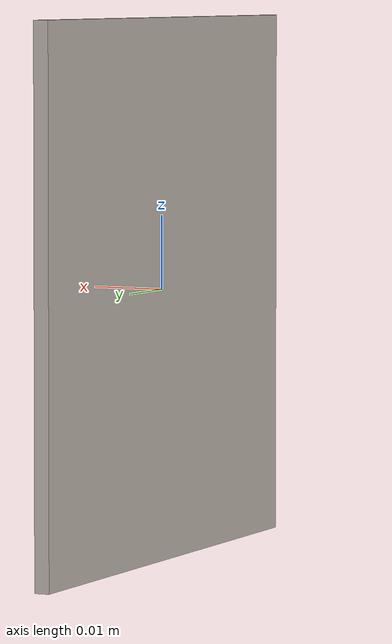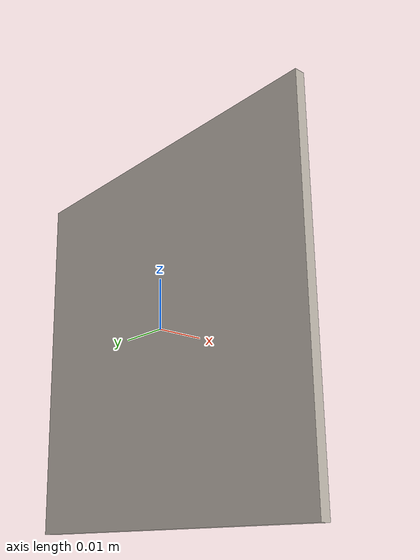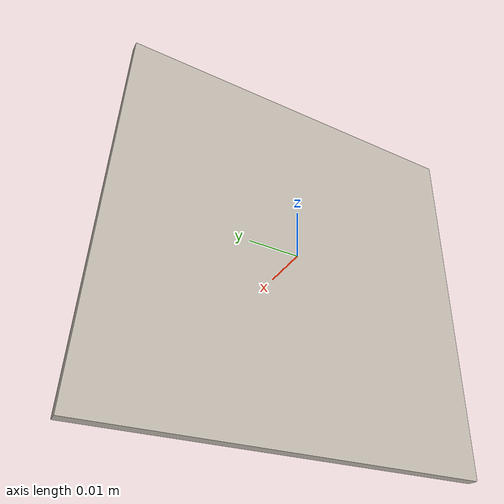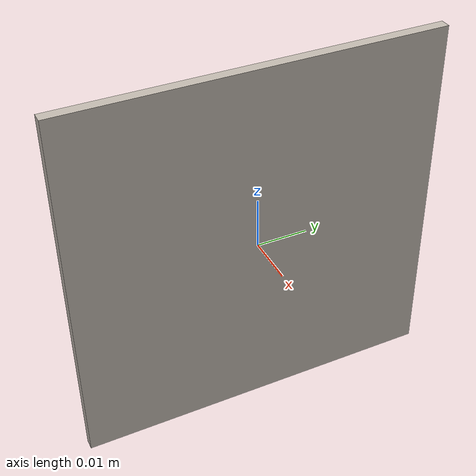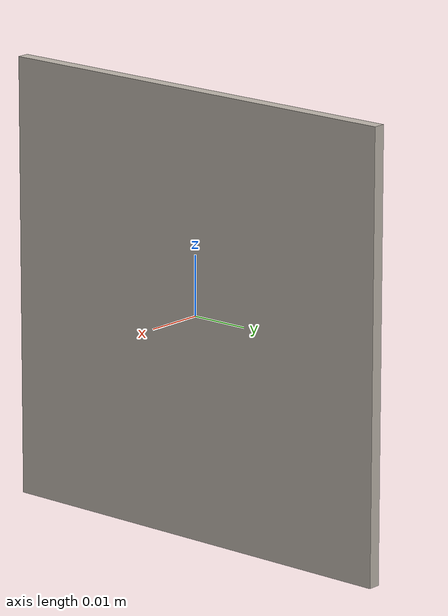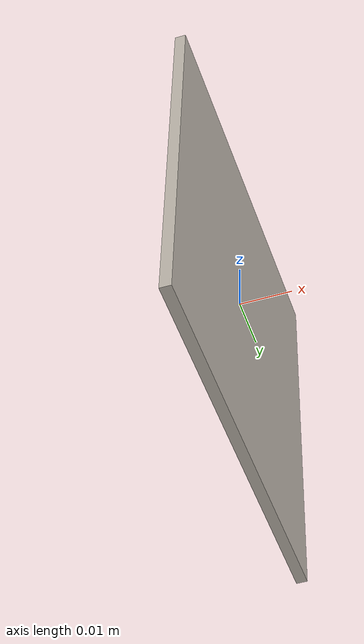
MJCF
<mujoco model="AprilTag_0000">
  <default>
    <default class="visual">
      <geom group="2" type="mesh" contype="0" conaffinity="0"/>
    </default>
    <default class="collision">
      <geom group="3" type="mesh"/>
    </default>
  </default>
  <asset>
    <texture type="2d" name="material_AprilTag_0000_0" file="material_AprilTag_0000_0.png"/>
    <material name="material_AprilTag_0000_0" texture="material_AprilTag_0000_0" specular="0.4000000000000001" shininess="0.001"/>
    <mesh file="AprilTag_0000.obj"/>
  </asset>
  <worldbody>
    <body name="AprilTag_0000">
      <geom material="material_AprilTag_0000_0" mesh="AprilTag_0000" class="visual"/>
      <geom mesh="AprilTag_0000" class="collision"/>
    </body>
  </worldbody>
</mujoco>
